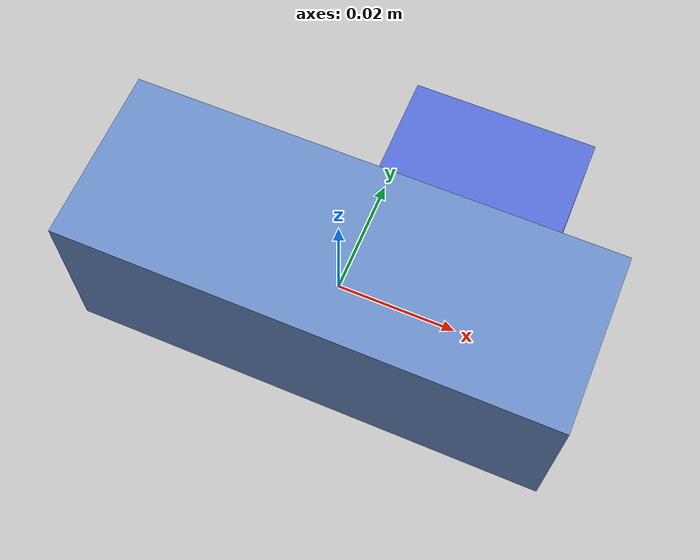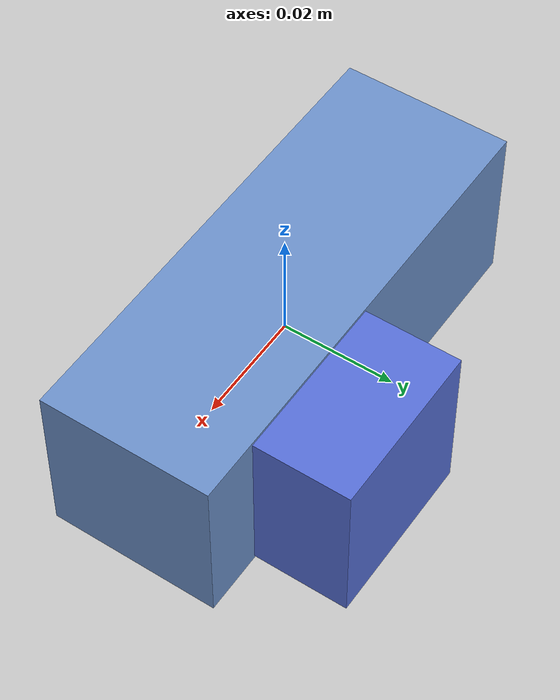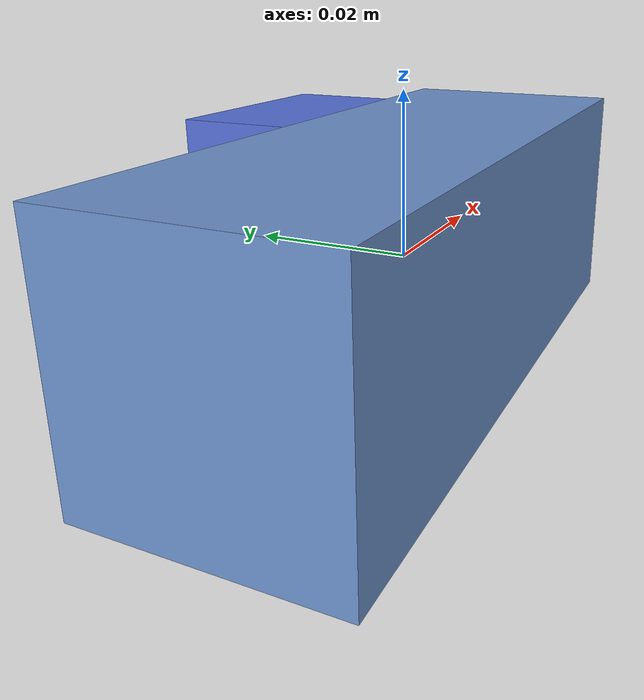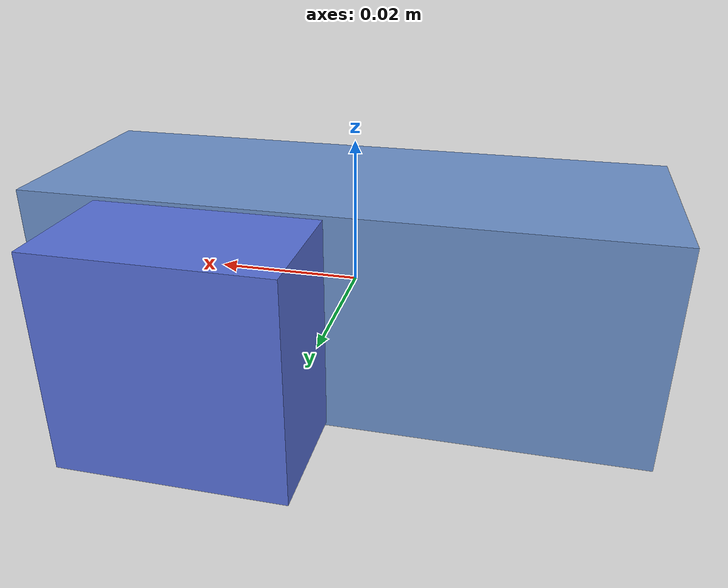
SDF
<sdf version="1.4"><world name="default"><model name="object0"><link name="link1"><pose>0 0 0 0 0 0</pose><inertial><pose>0 0 0 0 0 0</pose><mass>0.04468619364528349</mass><inertia><ixx>6.702929046792523e-06</ixx><ixy>0</ixy><iyy>2.885211882752607e-05</iyy><ixz>0</ixz><iyz>0</iyz><izz>2.885211882752607e-05</izz></inertia></inertial><visual name="link1_visual"><pose>0 0  0 0 0 0</pose><geometry><box><size>0.0827522104542287 0.03 0.03</size></box></geometry><material><diffuse>0.4246202018881121 0.568694912966867 0.7951979496832382 1</diffuse></material></visual><collision><pose>0 0  0 0 0 0</pose><geometry><box><size>0.0827522104542287 0.03 0.03</size></box></geometry></collision></link><link name="link2"><pose>0.015426096724730852 0.014078575963144477 0 0 0 0</pose><inertial><pose>0 0 0 0 0 0</pose><mass>0.019146034205910288</mass><inertia><ixx>3.3475259850313075e-06</ixx><ixy>0</ixy><iyy>2.7777704627074844e-06</iyy><ixz>0</ixz><iyz>0</iyz><izz>3.4416606532103665e-06</izz></inertia></inertial><visual name="link2_visual"><pose>0 0  0 0 0 0</pose><geometry><box><size>0.03 0.03545561889983387 0.028999999999999998</size></box></geometry><material><diffuse>0.3413338904843641 0.4391183951113389 0.85011753915255 1</diffuse></material></visual><collision><pose>0 0  0 0 0 0</pose><geometry><box><size>0.03 0.03545561889983387 0.028999999999999998</size></box></geometry></collision></link><joint name="link_joint_0" type="fixed"><parent>link1</parent><child>link2</child><pose>0 0 0 0 0 0</pose><axis><xyz>0 0 1</xyz></axis></joint></model></world></sdf>
